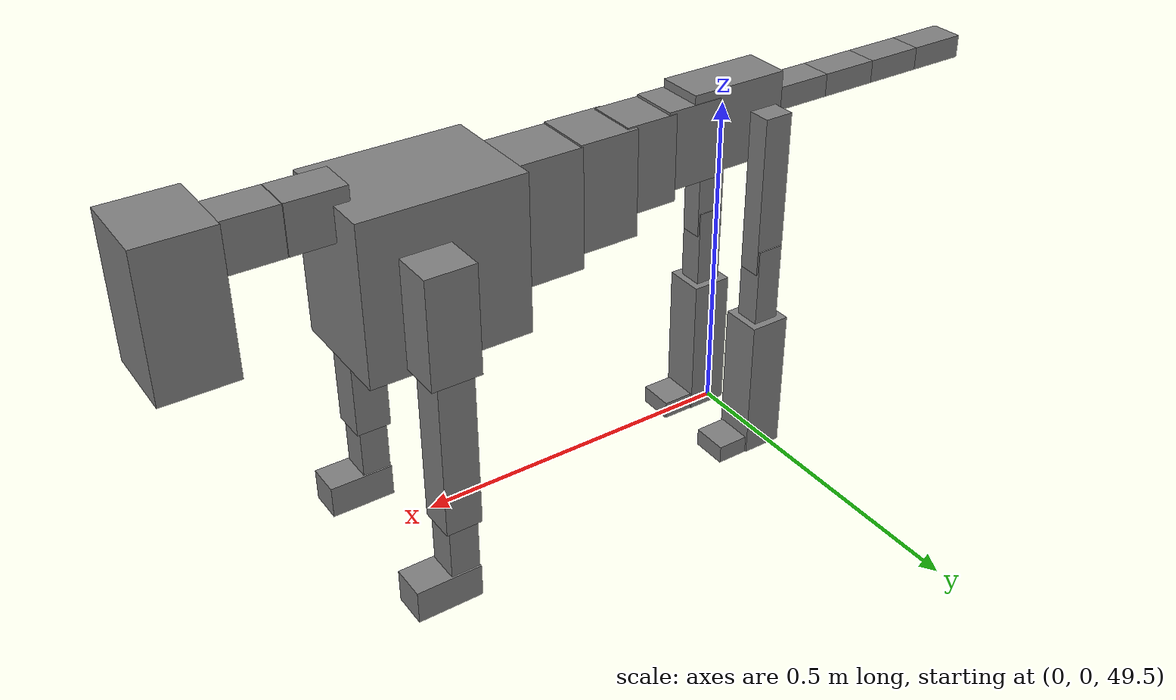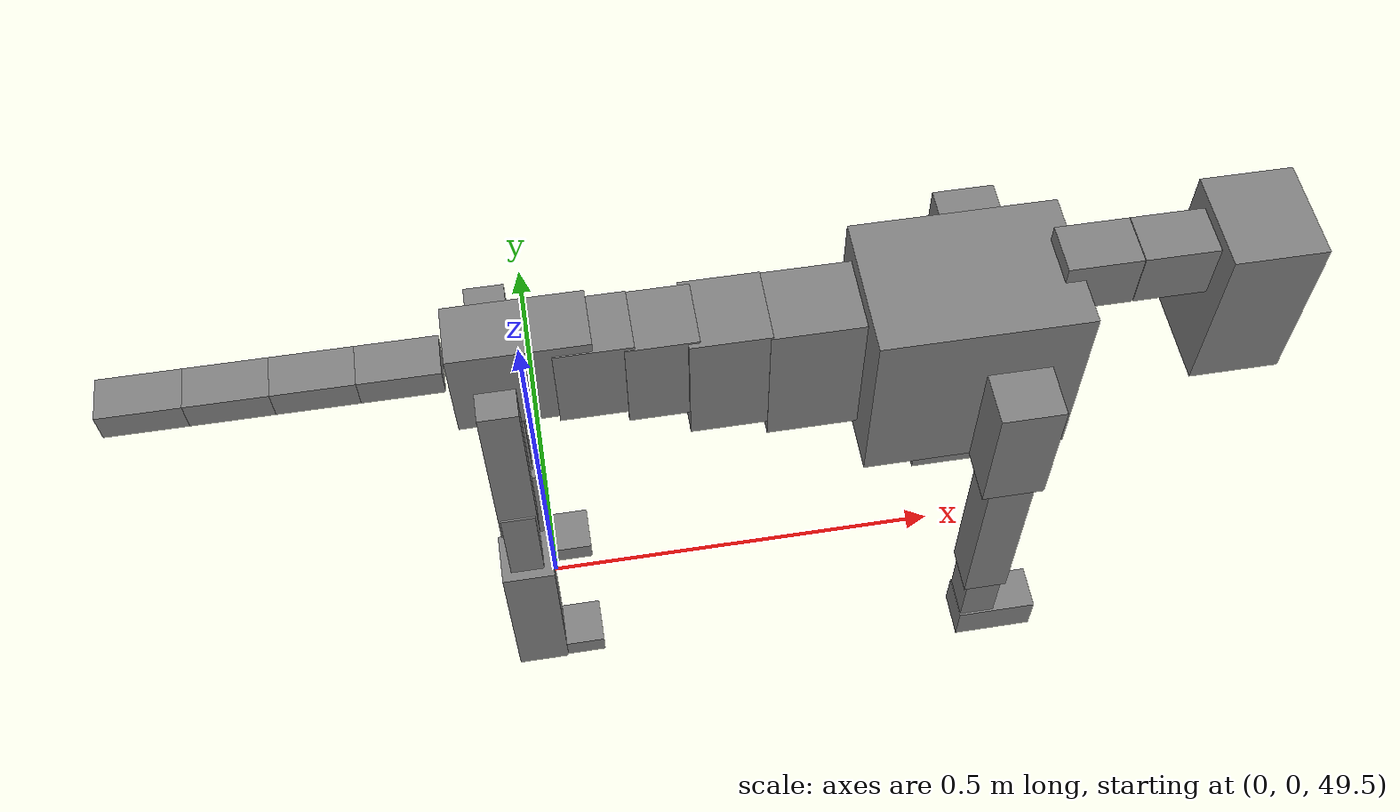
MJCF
<mujoco model="dog">

    <default>
        <joint armature="0.02" stiffness="1" damping="0.2" limited="true"/>
        <geom condim="3" friction="1 0.05 0.05" margin="0.01"/>
        <motor ctrllimited="true" ctrlrange="-1.0 1.0" forcelimited="true" gear="50"/>
    </default>

    <compiler inertiafromgeom="true" angle="radian"/>

    <option timestep="0.016" iterations="50" tolerance="1e-10" solver="Newton" jacobian="dense" cone="pyramidal"/>

    <size nconmax="20000" njmax="60000" nstack="5000000"/>
    <visual>
        <map force="0.1" zfar="30"/>
        <rgba haze="0.15 0.25 0.35 1"/>
        <quality shadowsize="2048"/>
        <global offwidth="800" offheight="800"/>
    </visual>

    <asset>
        <texture type="skybox" builtin="gradient" rgb1="0.3 0.5 0.7" rgb2="0 0 0" width="512" height="512"/>
        <texture name="texplane" type="2d" builtin="checker" rgb1=".2 .3 .4" rgb2=".1 0.15 0.2" width="512" height="512"
                 mark="cross" markrgb=".8 .8 .8"/>
        <texture name="texgeom" type="cube" builtin="flat" mark="cross" width="127" height="1278" rgb1="0.8 0.6 0.4"
                 rgb2="0.8 0.6 0.4" markrgb="1 1 1" random="0.01"/>

        <material name="matplane" reflectance="0.3" texture="texplane" texrepeat="1 1" texuniform="true"/>
        <material name="matgeom" texture="texgeom" texuniform="true" rgba="0.8 0.6 .4 1"/>
    </asset>

    <worldbody>
        <geom name="floor" pos="0 0 0" size="0 0 .25" type="plane" material="matplane" condim="3"/>

        <light directional="false" diffuse=".2 .2 .2" specular="0 0 0" pos="0 0 5" dir="0 0 -1" castshadow="false"/>
        <light mode="targetbodycom" target="torso" directional="false" diffuse=".8 .8 .8" specular="0.3 0.3 0.3"
               pos="0 0 4.0" dir="0 0 -1"/>

        <body name="root" pos="0 0 50">
            <freejoint name="root_1"/>
            <geom type="box" pos="0 0 -0.02" size="0.0774  0.0358  0.063" density="2030"/>

            <body name="spine1" pos="0.054 0 0">
                <joint name="spine1_y" axis="0 1 0" range="0 0.7" limited="true"/>
                <geom type="box" pos="0.02375 0 -0.03" size="0.04375  0.0375  0.05985" density="2030"/>

                <body name="spine2" pos="0.0612 0 0">
                    <joint name="spine2_y" axis="0 1 0" range="-0.15 0.15" limited="true"/>
                    <geom type="box" pos="0.03555  0  -0.04" size="0.04055  0.039  0.06615" density="2030"/>

                    <body name="spine3" pos="0.0730 0 0">
                        <joint name="spine3_y" axis="0 1 0" range="-0.15 0.15" limited="true"/>
                        <geom type="box" pos="0.03555  0  -0.057" size="0.04555  0.0445  0.081" density="2030"/>

                        <body name="spine4" pos="0.0780 0 0">
                            <joint name="spine4_y" axis="0 1 0" range="-0.15 0.15" limited="true"/>
                            <geom type="box" pos="0.05265  0  -0.07" size="0.05265  0.045  0.09135" density="2030"/>

                            <body name="torso" pos="0.1082 0 0">
                                <joint name="torso_y" axis="0 1 0" range="-0.15 0.15" limited="true"/>
                                <geom type="box" pos="0.11925  0  -0.085" size="0.11925  0.085  0.11745"
                                      density="2030"/>

                                <body name="neck1" pos="0.2160  0   0.0180">
                                    <joint name="neck1_y" axis="0 1 0" range="-1.2  -1" limited="true"/>
                                    <geom type="box" pos="0.0423  0  0" size="0.0423  0.03  0.036" density="2325"/>

                                    <body name="neck2" pos="0.0853  0  0">
                                        <joint name="neck2_y" axis="0 1 0" range="0.1  0" limited="true"/>
                                        <geom type="box" pos="0.0423  0  0" size="0.0423  0.03  0.036" density="2325"/>

                                        <body name="head" pos="0.0853  0  0">
                                            <joint name="head_y" axis="0 1 0" range="-0.3  -0.2" limited="true"/>
                                            <geom type="box" pos="0.0531  0  -0.055" size="0.0531  0.06  0.1044"
                                                  density="4030"/>

                                        </body>
                                    </body>
                                </body>

                                <body name="front_shoulder" pos="0.156  0   -0.0480">
                                    <joint name="front_shoulder_y" axis="0 1 0" range="-1 1.5" limited="true"/>
                                    <geom type="box" pos="0 0.13 -0.0530" size="0.0362  0.0309  0.0797" density="1158"/>
                                    <geom type="box" pos="0 -0.13 -0.0530" size="0.0362  0.0309  0.0797"
                                          density="1158"/>

                                    <body name="front_elbow" pos="0  0  -0.1060">
                                        <joint name="front_elbow_y" axis="0 1 0" range="-2 0" limited="true"/>
                                        <geom type="box" pos="0 0.13 -0.1299" size="0.0266  0.0272  0.1299"
                                              density="1081"/>
                                        <geom type="box" pos="0 -0.13 -0.1299" size="0.0266  0.0272  0.1299"
                                              density="1081"/>

                                        <body name="front_wrist" pos="0  0  -0.2598">
                                            <joint name="front_wrist_y" axis="0 1 0" range="-0.2 0" limited="true"/>
                                            <geom type="box" pos="0 0.13 -0.0453" size="0.0216  0.0239  0.0585"
                                                  density="1664"/>
                                            <geom type="box" pos="0 -0.13 -0.0453" size="0.0216  0.0239  0.0585"
                                                  density="1664"/>

                                            <body name="front_finger_end" pos="0  0  -0.0906">
                                                <joint name="front_finger_y" axis="0 1 0" range="-0.4 1"
                                                       limited="true"/>
                                                <geom type="box" pos="0.0266  0.13  -0.0101"
                                                      size="0.0489  0.0266  0.0251" density="1515"/>
                                                <geom type="box" pos="0.0266  -0.13  -0.0101"
                                                      size="0.0489  0.0266  0.0251" density="1515"/>

                                            </body>

                                        </body>
                                    </body>
                                </body>

                            </body>
                        </body>
                    </body>
                </body>
            </body>

            <body name="back_hip" pos="-0.03 0 -0.018">
                <joint name="back_hip_y" axis="0 1 0" range="-1.5 0.3" limited="true"/>
                <geom type="box" pos="0 0.07 -0.1009" size="0.0223  0.0175  0.1237" density="1154"/>
                <geom type="box" pos="0 -0.07 -0.1009" size="0.0223  0.0175  0.1237" density="1154"/>

                <body name="back_knee" pos="0  0  -0.2017">
                    <joint name="back_knee_y" axis="0 1 0" range="0 2.8" limited="true"/>
                    <geom type="box" pos="0 0.07 -0.0588" size="0.0201  0.0198  0.0743" density="1227"/>
                    <geom type="box" pos="0 -0.07 -0.0588" size="0.0201  0.0198  0.0743" density="1227"/>

                    <body name="back_ankle" pos="0  0  -0.1176">
                        <joint name="back_ankle_y" axis="0 1 0" range="-2.2 0" limited="true"/>
                        <geom type="box" pos="0 0.07 -0.1015" size="0.0314  0.0314  0.1128" density="1284"/>
                        <geom type="box" pos="0 -0.07 -0.1015" size="0.0314  0.0314  0.1128" density="1284"/>

                        <body name="back_toe_end" pos="0  0  -0.2030">
                            <joint name="back_toe_y" axis="0 1 0" range="-0.4 1" limited="true"/>
                            <geom type="box" pos="0.0283  0.07  0.0010" size="0.0519  0.0283  0.0140" density="1515"/>
                            <geom type="box" pos="0.0283  -0.07  0.0010" size="0.0519  0.0283  0.0140" density="1515"/>

                        </body>
                    </body>
                </body>
            </body>

            <body name="tail1" pos="-0.074 0 -0.006">
                <joint name="tail1_y" axis="0 1 0" range="-0.2 0.2" limited="true"/>
                <geom type="box" pos="-0.0536  0  0" size="0.045  0.025  0.0175" density="1587"/>

                <body name="tail2" pos="-0.09 0 0">
                    <joint name="tail2_y" axis="0 1 0" range="-0.2 0.2" limited="true"/>
                    <geom type="box" pos="-0.0536  0  0" size="0.045  0.025  0.0175" density="1587"/>

                    <body name="tail3" pos="-0.09 0 0">
                        <joint name="tail3_y" axis="0 1 0" range="-0.2 0.2" limited="true"/>
                        <geom type="box" pos="-0.0536  0  0" size="0.045  0.025  0.0175" density="1587"/>

                        <body name="tail4" pos="-0.09 0 0">
                            <joint name="tail4_y" axis="0 1 0" range="-0.2 0.2" limited="true"/>
                            <geom type="box" pos="-0.0536  0  0" size="0.045  0.025  0.0175" density="1587"/>

                        </body>
                    </body>
                </body>
            </body>
        </body>
    </worldbody>

    <actuator>
        <motor joint="spine1_y" forcerange="-150 150     "/>
        <motor joint="spine2_y" forcerange="-150 150     "/>
        <motor joint="spine3_y" forcerange="-150 150     "/>
        <motor joint="spine4_y" forcerange="-150 150     "/>
        <motor joint="torso_y" forcerange="-150 150     "/>
        <motor joint="neck1_y" forcerange="-100 100       "/>
        <motor joint="neck2_y" forcerange="-100 100       "/>
        <motor joint="head_y" forcerange="-150 150       "/>
        <motor joint="front_shoulder_y" forcerange="-168.50 137.52"/>
        <motor joint="front_elbow_y" forcerange="-154.18 143.79"/>
        <motor joint="front_wrist_y" forcerange="-64.96 126.63"/>
        <motor joint="front_finger_y" forcerange="-71.18 30.94"/>
        <motor joint="back_hip_y" forcerange="-219.97 213.69"/>
        <motor joint="back_knee_y" forcerange="-267.31 221.15"/>
        <motor joint="back_angle_y" forcerange="-168.43 233.61"/>
        <motor joint="back_toe_y" forcerange="-72.18 74.51"/>
        <motor joint="tail1_y" forcerange="-50 50     "/>
        <motor joint="tail2_y" forcerange="-50 50     "/>
        <motor joint="tail3_y" forcerange="-50 50     "/>
        <motor joint="tail4_y" forcerange="-50 50     "/>
    </actuator>
</mujoco>
